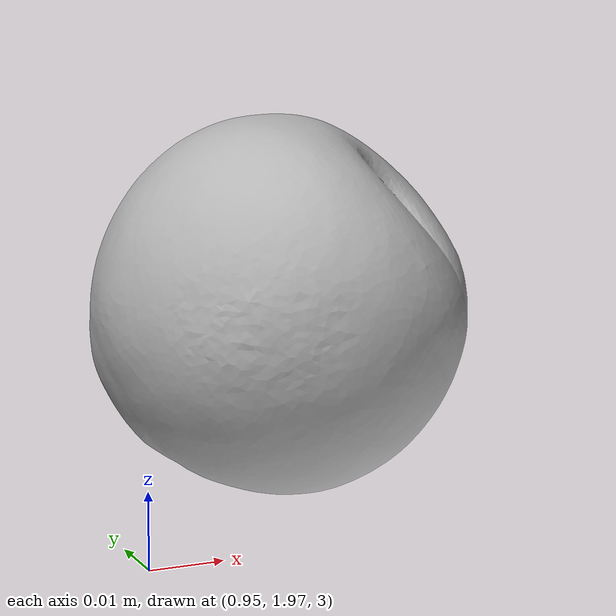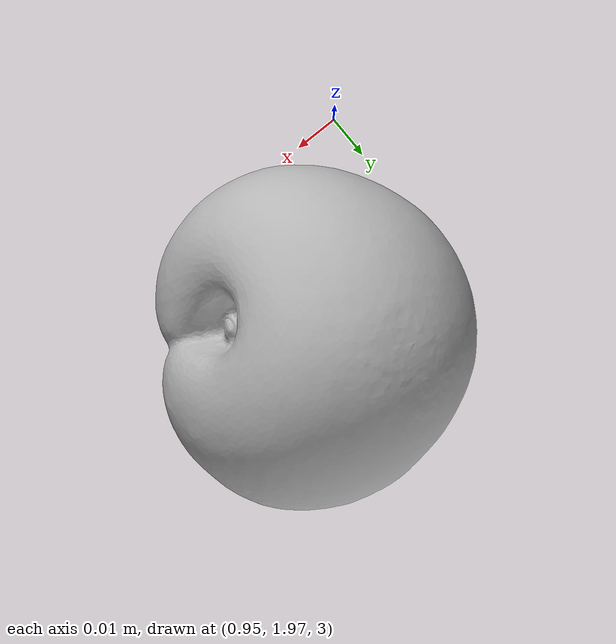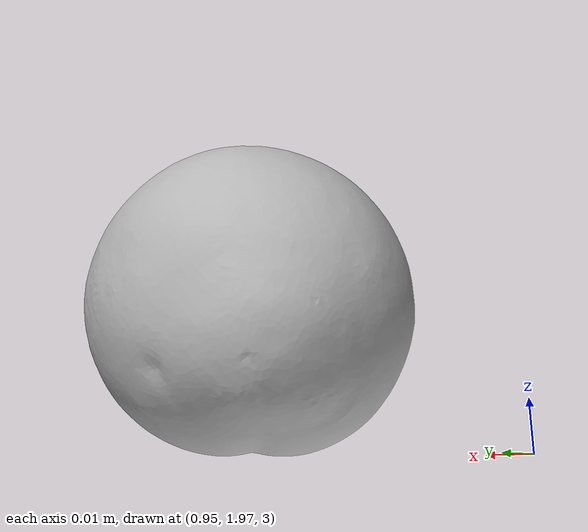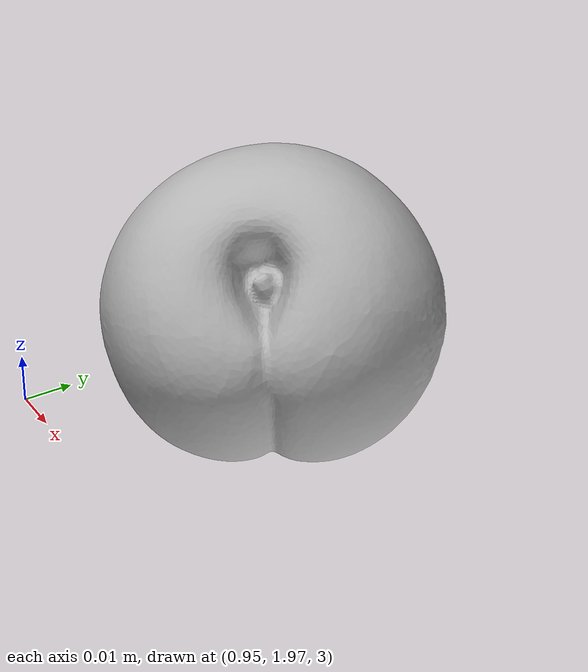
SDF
<?xml version="1.0"?>
<sdf version="1.7">
<!--
This SDF file was automatically generated using a template modified
and authored by Adwait Naik. The moment of interia is not supposed to be changed.
-->
    <model name="peach">
      <pose>1.0 2.0 3.0 0 0 0</pose>
      <link name="link">
        <inertial>
          <inertia>
           <ixx>4.5876541133456013e-08</ixx>
           <ixy>-6.824671211078382e-24</ixy>
           <ixz>4.976057697768975e-24</ixz>
           <iyy>4.4440446186663605e-08</iyy>
           <iyz>-3.0375618849172078e-24</iyz>
           <izz>4.0982746223781025e-08</izz>
          </inertia>
          <mass>0.00011721380481271601</mass>
        </inertial>
        <collision name="collision">
          <geometry>
          	<mesh>
             <uri>textured.dae</uri>
            </mesh>
          </geometry>
        </collision>

        <visual name="visual">
          <geometry>
          	<mesh>
            <uri>model://peach/textured.dae</uri>
	        </mesh>
          </geometry>
        </visual>
      </link>
    </model>
</sdf>
